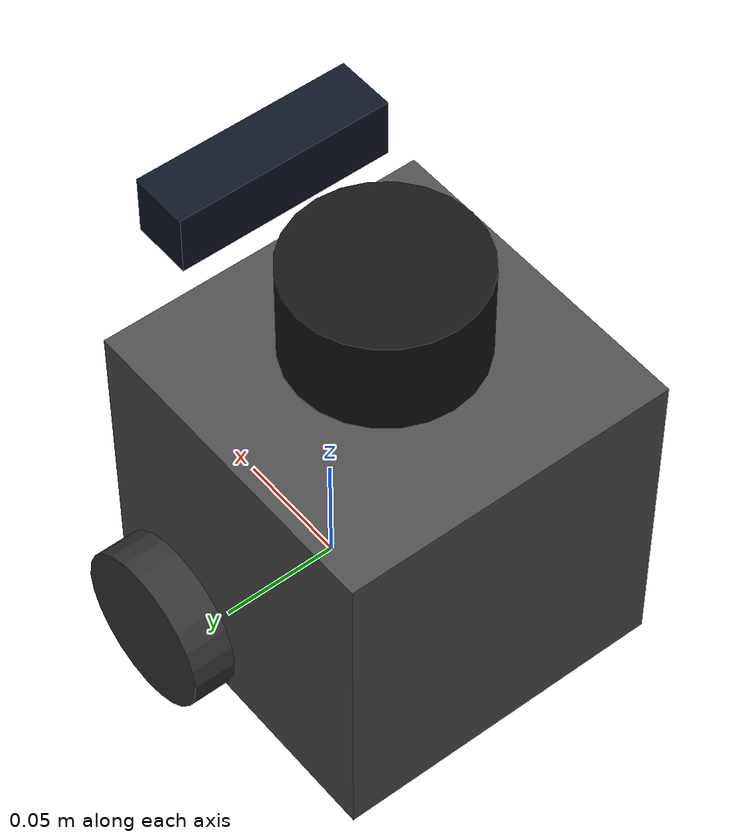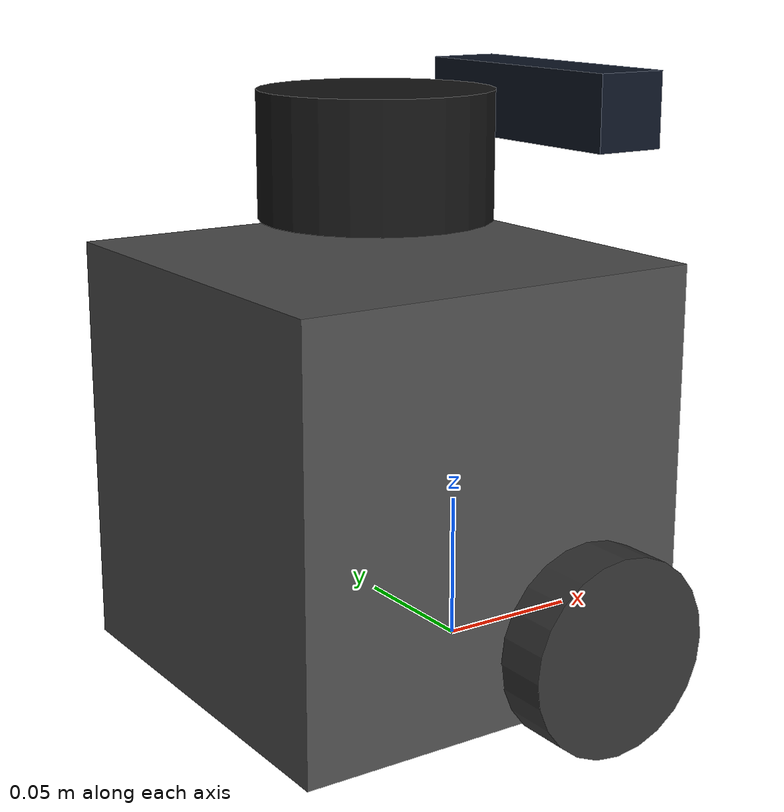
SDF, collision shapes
<?xml version="1.0" ?>
<sdf version="1.6">
  <!--
    Burger Pro Gazebo 模型（SDF）。

    本文件是“仿真行为核心”：
    1) 几何/惯量/碰撞（决定物理效果）
    2) 传感器插件（/scan /imu /camera/...）
    3) 运动插件（/cmd_vel -> 轮速，输出 /odom 与 odom->base_footprint TF）
  -->
  <model name="turtlebot3_burger_pro">
    <pose>0.0 0.0 0.0 0.0 0.0 0.0</pose>

    <!-- 基准坐标系：贴地，不含碰撞体 -->
    <link name="base_footprint"/>

    <!-- 机体主链接 -->
    <link name="base_link">

      <inertial>
        <pose>-0.032 0 0.070 0 0 0</pose>
        <inertia>
          <ixx>7.2397393e-01</ixx>
          <ixy>4.686399e-10</ixy>
          <ixz>-1.09525703e-08</ixz>
          <iyy>7.2397393e-01</iyy>
          <iyz>2.8582649e-09</iyz>
          <izz>6.53050163e-01</izz>
        </inertia>
        <mass>8.2573504e-01</mass>
      </inertial>

      <collision name="base_collision">
        <pose>-0.032 0 0.070 0 0 0</pose>
        <geometry>
          <box>
            <size>0.140 0.140 0.140</size>
          </box>
        </geometry>
      </collision>

      <visual name="base_visual">
        <pose>-0.032 0 0 0 0 0</pose>
        <geometry>
          <mesh>
            <uri>model://turtlebot3_common/meshes/bases/burger_base.stl</uri>
            <scale>0.001 0.001 0.001</scale>
          </mesh>
        </geometry>
        <material>
          <ambient>0.3 0.3 0.3 1.0</ambient>
          <diffuse>0.3 0.3 0.3 1.0</diffuse>
        </material>
      </visual>
    </link>

    <!-- IMU 链接 + Gazebo ROS IMU 插件 -->
    <link name="imu_link">
      <sensor name="tb3_imu" type="imu">
        <always_on>true</always_on>
        <update_rate>200</update_rate>
        <imu>
          <angular_velocity>
            <x>
              <noise type="gaussian">
                <mean>0.0</mean>
                <stddev>2e-4</stddev>
              </noise>
            </x>
            <y>
              <noise type="gaussian">
                <mean>0.0</mean>
                <stddev>2e-4</stddev>
              </noise>
            </y>
            <z>
              <noise type="gaussian">
                <mean>0.0</mean>
                <stddev>2e-4</stddev>
              </noise>
            </z>
          </angular_velocity>
          <linear_acceleration>
            <x>
              <noise type="gaussian">
                <mean>0.0</mean>
                <stddev>1.7e-2</stddev>
              </noise>
            </x>
            <y>
              <noise type="gaussian">
                <mean>0.0</mean>
                <stddev>1.7e-2</stddev>
              </noise>
            </y>
            <z>
              <noise type="gaussian">
                <mean>0.0</mean>
                <stddev>1.7e-2</stddev>
              </noise>
            </z>
          </linear_acceleration>
        </imu>
        <plugin name="turtlebot3_imu" filename="libgazebo_ros_imu_sensor.so">
          <ros>
            <remapping>~/out:=imu</remapping>
          </ros>
        </plugin>
      </sensor>
    </link>

    <!-- RPLIDAR A2M12 链接 + Ray Sensor（发布 /scan） -->
    <link name="base_scan">
      <pose>-0.032 0 0.172 0 0 0</pose>

      <inertial>
        <pose>0 0 0 0 0 0</pose>
        <inertia>
          <ixx>0.001</ixx>
          <ixy>0.000</ixy>
          <ixz>0.000</ixz>
          <iyy>0.001</iyy>
          <iyz>0.000</iyz>
          <izz>0.001</izz>
        </inertia>
        <mass>0.19</mass>
      </inertial>

      <collision name="lidar_sensor_collision">
        <pose>0 0 0 0 0 0</pose>
        <geometry>
          <cylinder>
            <radius>0.038</radius>
            <length>0.041</length>
          </cylinder>
        </geometry>
      </collision>

      <visual name="lidar_sensor_visual">
        <pose>0 0 0 0 0 0</pose>
        <geometry>
          <cylinder>
            <radius>0.038</radius>
            <length>0.041</length>
          </cylinder>
        </geometry>
        <material>
          <ambient>0.08 0.08 0.08 1.0</ambient>
          <diffuse>0.08 0.08 0.08 1.0</diffuse>
        </material>
      </visual>

      <sensor name="rplidar_a2m12" type="ray">
        <always_on>true</always_on>
        <visualize>false</visualize>
        <pose>0 0 0 0 0 0</pose>
        <update_rate>10</update_rate>
        <ray>
          <scan>
            <horizontal>
              <samples>1800</samples>
              <resolution>1.000000</resolution>
              <min_angle>-3.14159265</min_angle>
              <max_angle>3.14159265</max_angle>
            </horizontal>
          </scan>
          <range>
            <min>0.150000</min>
            <max>16.0</max>
            <resolution>0.010000</resolution>
          </range>
          <noise>
            <type>gaussian</type>
            <mean>0.0</mean>
            <stddev>0.015</stddev>
          </noise>
        </ray>
        <plugin name="rplidar_a2m12_laserscan" filename="libgazebo_ros_ray_sensor.so">
          <ros>
            <remapping>~/out:=scan</remapping>
          </ros>
          <output_type>sensor_msgs/LaserScan</output_type>
          <frame_name>base_scan</frame_name>
        </plugin>
      </sensor>
    </link>

    <!-- 左轮 -->
    <link name="wheel_left_link">

      <inertial>
        <pose>0 0.08 0.023 -1.57 0 0</pose>
        <inertia>
          <ixx>1.8158194e-03</ixx>
          <ixy>-9.3392e-12</ixy>
          <ixz>1.04909e-11</ixz>
          <iyy>3.2922126e-03</iyy>
          <iyz>5.75694e-11</iyz>
          <izz>1.8158194e-03</izz>
        </inertia>
        <mass>2.8498940e-02</mass>
      </inertial>

      <collision name="wheel_left_collision">
        <pose>0 0.08 0.023 -1.57 0 0</pose>
        <geometry>
          <cylinder>
            <radius>0.033</radius>
            <length>0.018</length>
          </cylinder>
        </geometry>
        <surface>
          <!-- This friction pamareter don't contain reliable data!! -->
          <friction>
            <ode>
              <mu>100000.0</mu>
              <mu2>100000.0</mu2>
              <fdir1>0 0 0</fdir1>
              <slip1>0.0</slip1>
              <slip2>0.0</slip2>
            </ode>
          </friction>
          <contact>
            <ode>
              <soft_cfm>0</soft_cfm>
              <soft_erp>0.2</soft_erp>
              <kp>1e+5</kp>
              <kd>1</kd>
              <max_vel>0.01</max_vel>
              <min_depth>0.001</min_depth>
            </ode>
          </contact>
        </surface>
      </collision>

      <visual name="wheel_left_visual">
        <pose>0 0.08 0.023 0 0 0</pose>
        <geometry>
          <mesh>
            <uri>model://turtlebot3_common/meshes/wheels/left_tire.stl</uri>
            <scale>0.001 0.001 0.001</scale>
          </mesh>
        </geometry>
        <material>
          <ambient>0.2 0.2 0.2 1.0</ambient>
          <diffuse>0.2 0.2 0.2 1.0</diffuse>
        </material>
      </visual>
    </link>

    <!-- 右轮 -->
    <link name="wheel_right_link">

      <inertial>
        <pose>0.0 -0.08 0.023 -1.57 0 0</pose>
        <inertia>
          <ixx>1.8158194e-03</ixx>
          <ixy>-9.3392e-12</ixy>
          <ixz>1.04909e-11</ixz>
          <iyy>3.2922126e-03</iyy>
          <iyz>5.75694e-11</iyz>
          <izz>1.8158194e-03</izz>
        </inertia>
        <mass>2.8498940e-02</mass>
      </inertial>

      <collision name="wheel_right_collision">
        <pose>0.0 -0.08 0.023 -1.57 0 0</pose>
        <geometry>
          <cylinder>
            <radius>0.033</radius>
            <length>0.018</length>
          </cylinder>
        </geometry>
        <surface>
          <!-- This friction pamareter don't contain reliable data!! -->
          <friction>
            <ode>
              <mu>100000.0</mu>
              <mu2>100000.0</mu2>
              <fdir1>0 0 0</fdir1>
              <slip1>0.0</slip1>
              <slip2>0.0</slip2>
            </ode>
          </friction>
          <contact>
            <ode>
              <soft_cfm>0</soft_cfm>
              <soft_erp>0.2</soft_erp>
              <kp>1e+5</kp>
              <kd>1</kd>
              <max_vel>0.01</max_vel>
              <min_depth>0.001</min_depth>
            </ode>
          </contact>
        </surface>
      </collision>

      <visual name="wheel_right_visual">
        <pose>0.0 -0.08 0.023 0 0 0</pose>
        <geometry>
          <mesh>
            <uri>model://turtlebot3_common/meshes/wheels/right_tire.stl</uri>
            <scale>0.001 0.001 0.001</scale>
          </mesh>
        </geometry>
        <material>
          <ambient>0.2 0.2 0.2 1.0</ambient>
          <diffuse>0.2 0.2 0.2 1.0</diffuse>
        </material>
      </visual>
    </link>

    <!-- 后万向轮（被动接触） -->
    <link name='caster_back_link'>
      <pose>-0.081 0 -0.004 -1.57 0 0</pose>
      <inertial>
        <mass>0.005</mass>
        <inertia>
          <ixx>0.001</ixx>
          <ixy>0.000</ixy>
          <ixz>0.000</ixz>
          <iyy>0.001</iyy>
          <iyz>0.000</iyz>
          <izz>0.001</izz>
        </inertia>
      </inertial>
      <collision name='collision'>
        <geometry>
          <sphere>
            <radius>0.005000</radius>
          </sphere>
        </geometry>
        <surface>
          <contact>
            <ode>
              <soft_cfm>0</soft_cfm>
              <soft_erp>0.2</soft_erp>
              <kp>1e+5</kp>
              <kd>1</kd>
              <max_vel>0.01</max_vel>
              <min_depth>0.001</min_depth>
            </ode>
          </contact>
        </surface>
      </collision>
    </link>

    <!-- RealSense D435i 近似模型 + 深度相机插件 -->
    <link name="camera_link">
      <pose>0.035 0 0.185 0 0 0</pose>

      <inertial>
        <pose>0 0 0 0 0 0</pose>
        <inertia>
          <ixx>0.001</ixx>
          <ixy>0.000</ixy>
          <ixz>0.000</ixz>
          <iyy>0.001</iyy>
          <iyz>0.000</iyz>
          <izz>0.001</izz>
        </inertia>
        <mass>0.072</mass>
      </inertial>

      <collision name="realsense_d435i_collision">
        <pose>0 0 0 0 0 0</pose>
        <geometry>
          <box>
            <size>0.025 0.090 0.025</size>
          </box>
        </geometry>
      </collision>

      <visual name="realsense_d435i_visual">
        <pose>0 0 0 0 0 0</pose>
        <geometry>
          <box>
            <size>0.025 0.090 0.025</size>
          </box>
        </geometry>
        <material>
          <ambient>0.05 0.08 0.14 1.0</ambient>
          <diffuse>0.05 0.08 0.14 1.0</diffuse>
        </material>
      </visual>

      <sensor name="camera" type="depth">
        <always_on>true</always_on>
        <visualize>true</visualize>
        <update_rate>15</update_rate>
        <camera name="camera">
          <horizontal_fov>1.51844</horizontal_fov>
          <image>
            <width>640</width>
            <height>480</height>
            <format>R8G8B8</format>
          </image>
          <clip>
            <near>0.30</near>
            <far>3.0</far>
          </clip>
        </camera>
        <plugin name="camera_driver" filename="libgazebo_ros_camera.so">
          <alwaysOn>true</alwaysOn>
          <updateRate>15.0</updateRate>
          <cameraName>camera</cameraName>
          <frameName>camera_link</frameName>
          <!-- Legacy tags are kept for older gazebo_ros_camera variants. -->
          <imageTopicName>/camera/color/image_raw</imageTopicName>
          <cameraInfoTopicName>/camera/color/camera_info</cameraInfoTopicName>
          <depthImageTopicName>/camera/aligned_depth_to_color/image_raw</depthImageTopicName>
          <depthImageCameraInfoTopicName>/camera/aligned_depth_to_color/camera_info</depthImageCameraInfoTopicName>
          <hackBaseline>0.07</hackBaseline>
          <distortionK1>0.0</distortionK1>
          <distortionK2>0.0</distortionK2>
          <distortionK3>0.0</distortionK3>
          <distortionT1>0.0</distortionT1>
          <distortionT2>0.0</distortionT2>
          <ros>
            <remapping>camera/image_raw:=camera/color/image_raw</remapping>
            <remapping>camera/camera_info:=camera/color/camera_info</remapping>
            <remapping>camera/depth/image_raw:=camera/aligned_depth_to_color/image_raw</remapping>
            <remapping>camera/depth/camera_info:=camera/aligned_depth_to_color/camera_info</remapping>
          </ros>
        </plugin>
      </sensor>
    </link>

    <!-- 关节定义：建立完整 TF 树 -->
    <joint name="base_joint" type="fixed">
      <parent>base_footprint</parent>
      <child>base_link</child>
      <pose>0.0 0.0 0.010 0 0 0</pose>
    </joint>

    <joint name="wheel_left_joint" type="revolute">
      <parent>base_link</parent>
      <child>wheel_left_link</child>
      <pose>0.0 0.08 0.023 -1.57 0 0</pose>
      <axis>
        <xyz>0 0 1</xyz>
      </axis>
    </joint>

    <joint name="wheel_right_joint" type="revolute">
      <parent>base_link</parent>
      <child>wheel_right_link</child>
      <pose>0.0 -0.08 0.023 -1.57 0 0</pose>
      <axis>
        <xyz>0 0 1</xyz>
      </axis>
    </joint>

    <joint name='caster_back_joint' type='ball'>
      <parent>base_link</parent>
      <child>caster_back_link</child>
    </joint>

    <joint name="imu_joint" type="fixed">
      <parent>base_link</parent>
      <child>imu_link</child>
      <pose>-0.032 0 0.068 0 0 0</pose>
      <axis>
        <xyz>0 0 1</xyz>
      </axis>
    </joint>

    <joint name="lidar_joint" type="fixed">
      <parent>base_link</parent>
      <child>base_scan</child>
      <pose>0 0 0 0 0 0</pose>
      <axis>
        <xyz>0 0 1</xyz>
      </axis>
    </joint>

    <joint name="camera_joint" type="fixed">
      <parent>base_link</parent>
      <child>camera_link</child>
      <pose>0 0 0 0 0 0</pose>
      <axis>
        <xyz>0 0 1</xyz>
      </axis>
    </joint>

    <!--
      差速驱动插件：
      - 输入：/cmd_vel
      - 输出：/odom + odom->base_footprint TF
    -->
    <plugin name="turtlebot3_diff_drive" filename="libgazebo_ros_diff_drive.so">

      <ros>
      </ros>

      <update_rate>30</update_rate>

      <!-- wheels -->
      <left_joint>wheel_left_joint</left_joint>
      <right_joint>wheel_right_joint</right_joint>

      <!-- kinematics -->
      <wheel_separation>0.160</wheel_separation>
      <wheel_diameter>0.066</wheel_diameter>

      <!-- limits -->
      <max_wheel_torque>20</max_wheel_torque>
      <max_wheel_acceleration>1.0</max_wheel_acceleration>

      <!-- 使用绝对话题，避免命名空间混乱时订阅不到 -->
      <command_topic>/cmd_vel</command_topic>

      <!-- output -->
      <publish_odom>true</publish_odom>
      <publish_odom_tf>true</publish_odom_tf>
      <publish_wheel_tf>false</publish_wheel_tf>

      <odometry_topic>/odom</odometry_topic>
      <odometry_frame>odom</odometry_frame>
      <robot_base_frame>base_footprint</robot_base_frame>

    </plugin>

    <!-- 关节状态发布（便于 RViz 与状态可视化） -->
    <plugin name="turtlebot3_joint_state" filename="libgazebo_ros_joint_state_publisher.so">
      <ros>
        <remapping>~/out:=joint_states</remapping>
      </ros>
      <update_rate>30</update_rate>
      <joint_name>wheel_left_joint</joint_name>
      <joint_name>wheel_right_joint</joint_name>
    </plugin>
  </model>
</sdf>
